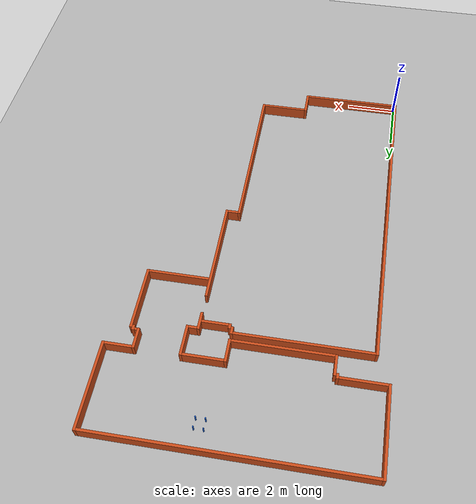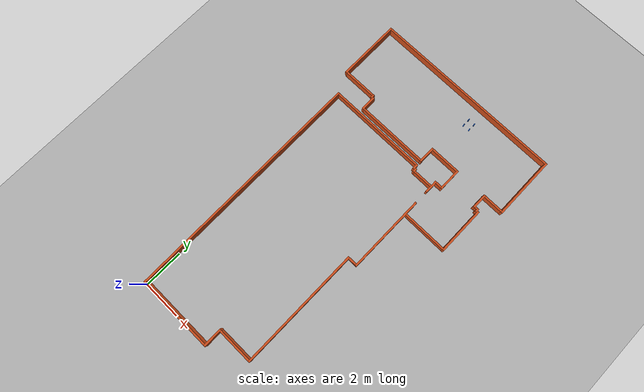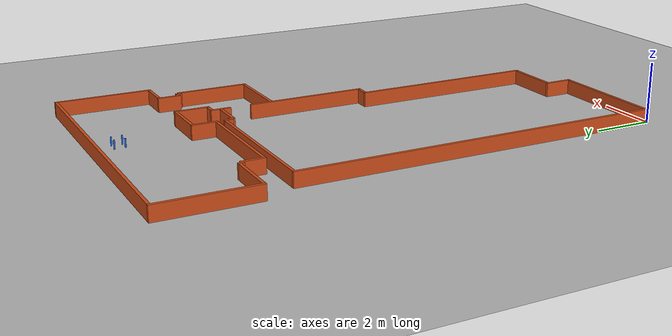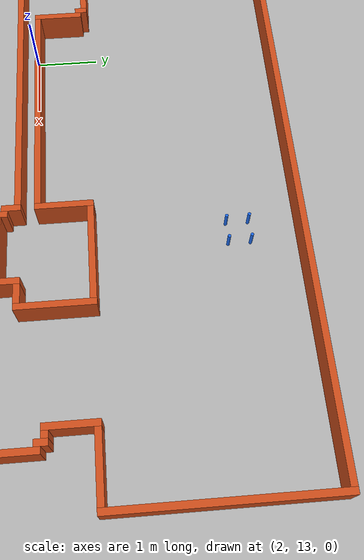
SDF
<?xml version="1.0"?>
<!-- Mundo de prueba generado a partir de map_10x10_2026.png (filas = x, columnas = y, offset x=-0.7 y=0.1) -->
<sdf version="1.6">
  <world name="default">
    <plugin filename="gz-sim-physics-system" name="gz::sim::systems::Physics"></plugin>
    <plugin filename="gz-sim-user-commands-system" name="gz::sim::systems::UserCommands"></plugin>
    <plugin filename="gz-sim-scene-broadcaster-system" name="gz::sim::systems::SceneBroadcaster"></plugin>
    <plugin filename="gz-sim-sensors-system" name="gz::sim::systems::Sensors">
      <render_engine>ogre2</render_engine>
    </plugin>
    <plugin filename="gz-sim-imu-system" name="gz::sim::systems::Imu"></plugin>
    <light type="directional" name="sun">
      <cast_shadows>false</cast_shadows>
      <pose>0 0 10 0 0 0</pose>
      <diffuse>0.8 0.8 0.8 1</diffuse>
      <direction>-0.5 0.1 -0.9</direction>
    </light>
    <model name="ground">
      <static>true</static>
      <link name="link">
        <collision name="collision"><geometry><plane><normal>0 0 1</normal><size>60 60</size></plane></geometry></collision>
        <visual name="visual">
          <geometry><plane><normal>0 0 1</normal><size>60 60</size></plane></geometry>
          <material><ambient>0.7 0.7 0.7 1</ambient><diffuse>0.7 0.7 0.7 1</diffuse></material>
        </visual>
      </link>
    </model>
    <model name="walls">
      <static>true</static>
      <link name="link">
        <collision name="c0"><pose>-0.550 15.450 0.25 0 0 0</pose><geometry><box><size>0.100 3.300 0.5</size></box></geometry></collision>
        <visual name="v0"><pose>-0.550 15.450 0.25 0 0 0</pose><geometry><box><size>0.100 3.300 0.5</size></box></geometry><material><ambient>0.8 0.3 0.1 1</ambient><diffuse>0.8 0.3 0.1 1</diffuse></material></visual>
        <collision name="c1"><pose>0.350 13.850 0.25 0 0 0</pose><geometry><box><size>1.700 0.100 0.5</size></box></geometry></collision>
        <visual name="v1"><pose>0.350 13.850 0.25 0 0 0</pose><geometry><box><size>1.700 0.100 0.5</size></box></geometry><material><ambient>0.8 0.3 0.1 1</ambient><diffuse>0.8 0.3 0.1 1</diffuse></material></visual>
        <collision name="c2"><pose>4.500 17.050 0.25 0 0 0</pose><geometry><box><size>10.000 0.100 0.5</size></box></geometry></collision>
        <visual name="v2"><pose>4.500 17.050 0.25 0 0 0</pose><geometry><box><size>10.000 0.100 0.5</size></box></geometry><material><ambient>0.8 0.3 0.1 1</ambient><diffuse>0.8 0.3 0.1 1</diffuse></material></visual>
        <collision name="c3"><pose>-0.050 6.450 0.25 0 0 0</pose><geometry><box><size>0.100 12.700 0.5</size></box></geometry></collision>
        <visual name="v3"><pose>-0.050 6.450 0.25 0 0 0</pose><geometry><box><size>0.100 12.700 0.5</size></box></geometry><material><ambient>0.8 0.3 0.1 1</ambient><diffuse>0.8 0.3 0.1 1</diffuse></material></visual>
        <collision name="c4"><pose>1.950 0.150 0.25 0 0 0</pose><geometry><box><size>3.900 0.100 0.5</size></box></geometry></collision>
        <visual name="v4"><pose>1.950 0.150 0.25 0 0 0</pose><geometry><box><size>3.900 0.100 0.5</size></box></geometry><material><ambient>0.8 0.3 0.1 1</ambient><diffuse>0.8 0.3 0.1 1</diffuse></material></visual>
        <collision name="c5"><pose>2.550 12.750 0.25 0 0 0</pose><geometry><box><size>5.100 0.100 0.5</size></box></geometry></collision>
        <visual name="v5"><pose>2.550 12.750 0.25 0 0 0</pose><geometry><box><size>5.100 0.100 0.5</size></box></geometry><material><ambient>0.8 0.3 0.1 1</ambient><diffuse>0.8 0.3 0.1 1</diffuse></material></visual>
        <collision name="c6"><pose>1.250 13.800 0.25 0 0 0</pose><geometry><box><size>0.100 0.200 0.5</size></box></geometry></collision>
        <visual name="v6"><pose>1.250 13.800 0.25 0 0 0</pose><geometry><box><size>0.100 0.200 0.5</size></box></geometry><material><ambient>0.8 0.3 0.1 1</ambient><diffuse>0.8 0.3 0.1 1</diffuse></material></visual>
        <collision name="c7"><pose>1.350 13.400 0.25 0 0 0</pose><geometry><box><size>0.100 0.800 0.5</size></box></geometry></collision>
        <visual name="v7"><pose>1.350 13.400 0.25 0 0 0</pose><geometry><box><size>0.100 0.800 0.5</size></box></geometry><material><ambient>0.8 0.3 0.1 1</ambient><diffuse>0.8 0.3 0.1 1</diffuse></material></visual>
        <collision name="c8"><pose>3.250 13.050 0.25 0 0 0</pose><geometry><box><size>3.700 0.100 0.5</size></box></geometry></collision>
        <visual name="v8"><pose>3.250 13.050 0.25 0 0 0</pose><geometry><box><size>3.700 0.100 0.5</size></box></geometry><material><ambient>0.8 0.3 0.1 1</ambient><diffuse>0.8 0.3 0.1 1</diffuse></material></visual>
        <collision name="c9"><pose>3.950 0.600 0.25 0 0 0</pose><geometry><box><size>0.100 1.000 0.5</size></box></geometry></collision>
        <visual name="v9"><pose>3.950 0.600 0.25 0 0 0</pose><geometry><box><size>0.100 1.000 0.5</size></box></geometry><material><ambient>0.8 0.3 0.1 1</ambient><diffuse>0.8 0.3 0.1 1</diffuse></material></visual>
        <collision name="c10"><pose>4.900 1.050 0.25 0 0 0</pose><geometry><box><size>1.800 0.100 0.5</size></box></geometry></collision>
        <visual name="v10"><pose>4.900 1.050 0.25 0 0 0</pose><geometry><box><size>1.800 0.100 0.5</size></box></geometry><material><ambient>0.8 0.3 0.1 1</ambient><diffuse>0.8 0.3 0.1 1</diffuse></material></visual>
        <collision name="c11"><pose>5.150 12.650 0.25 0 0 0</pose><geometry><box><size>0.100 0.300 0.5</size></box></geometry></collision>
        <visual name="v11"><pose>5.150 12.650 0.25 0 0 0</pose><geometry><box><size>0.100 0.300 0.5</size></box></geometry><material><ambient>0.8 0.3 0.1 1</ambient><diffuse>0.8 0.3 0.1 1</diffuse></material></visual>
        <collision name="c12"><pose>5.150 13.450 0.25 0 0 0</pose><geometry><box><size>0.100 0.900 0.5</size></box></geometry></collision>
        <visual name="v12"><pose>5.150 13.450 0.25 0 0 0</pose><geometry><box><size>0.100 0.900 0.5</size></box></geometry><material><ambient>0.8 0.3 0.1 1</ambient><diffuse>0.8 0.3 0.1 1</diffuse></material></visual>
        <collision name="c13"><pose>5.250 12.500 0.25 0 0 0</pose><geometry><box><size>0.100 0.200 0.5</size></box></geometry></collision>
        <visual name="v13"><pose>5.250 12.500 0.25 0 0 0</pose><geometry><box><size>0.100 0.200 0.5</size></box></geometry><material><ambient>0.8 0.3 0.1 1</ambient><diffuse>0.8 0.3 0.1 1</diffuse></material></visual>
        <collision name="c14"><pose>5.950 13.850 0.25 0 0 0</pose><geometry><box><size>1.500 0.100 0.5</size></box></geometry></collision>
        <visual name="v14"><pose>5.950 13.850 0.25 0 0 0</pose><geometry><box><size>1.500 0.100 0.5</size></box></geometry><material><ambient>0.8 0.3 0.1 1</ambient><diffuse>0.8 0.3 0.1 1</diffuse></material></visual>
        <collision name="c15"><pose>5.800 12.450 0.25 0 0 0</pose><geometry><box><size>1.000 0.100 0.5</size></box></geometry></collision>
        <visual name="v15"><pose>5.800 12.450 0.25 0 0 0</pose><geometry><box><size>1.000 0.100 0.5</size></box></geometry><material><ambient>0.8 0.3 0.1 1</ambient><diffuse>0.8 0.3 0.1 1</diffuse></material></visual>
        <collision name="c16"><pose>5.850 4.200 0.25 0 0 0</pose><geometry><box><size>0.100 6.400 0.5</size></box></geometry></collision>
        <visual name="v16"><pose>5.850 4.200 0.25 0 0 0</pose><geometry><box><size>0.100 6.400 0.5</size></box></geometry><material><ambient>0.8 0.3 0.1 1</ambient><diffuse>0.8 0.3 0.1 1</diffuse></material></visual>
        <collision name="c17"><pose>6.100 7.350 0.25 0 0 0</pose><geometry><box><size>0.400 0.100 0.5</size></box></geometry></collision>
        <visual name="v17"><pose>6.100 7.350 0.25 0 0 0</pose><geometry><box><size>0.400 0.100 0.5</size></box></geometry><material><ambient>0.8 0.3 0.1 1</ambient><diffuse>0.8 0.3 0.1 1</diffuse></material></visual>
        <collision name="c18"><pose>6.350 9.350 0.25 0 0 0</pose><geometry><box><size>0.100 4.100 0.5</size></box></geometry></collision>
        <visual name="v18"><pose>6.350 9.350 0.25 0 0 0</pose><geometry><box><size>0.100 4.100 0.5</size></box></geometry><material><ambient>0.8 0.3 0.1 1</ambient><diffuse>0.8 0.3 0.1 1</diffuse></material></visual>
        <collision name="c19"><pose>6.350 12.450 0.25 0 0 0</pose><geometry><box><size>0.100 0.700 0.5</size></box></geometry></collision>
        <visual name="v19"><pose>6.350 12.450 0.25 0 0 0</pose><geometry><box><size>0.100 0.700 0.5</size></box></geometry><material><ambient>0.8 0.3 0.1 1</ambient><diffuse>0.8 0.3 0.1 1</diffuse></material></visual>
        <collision name="c20"><pose>7.550 10.650 0.25 0 0 0</pose><geometry><box><size>2.300 0.100 0.5</size></box></geometry></collision>
        <visual name="v20"><pose>7.550 10.650 0.25 0 0 0</pose><geometry><box><size>2.300 0.100 0.5</size></box></geometry><material><ambient>0.8 0.3 0.1 1</ambient><diffuse>0.8 0.3 0.1 1</diffuse></material></visual>
        <collision name="c21"><pose>6.550 12.750 0.25 0 0 0</pose><geometry><box><size>0.300 0.100 0.5</size></box></geometry></collision>
        <visual name="v21"><pose>6.550 12.750 0.25 0 0 0</pose><geometry><box><size>0.300 0.100 0.5</size></box></geometry><material><ambient>0.8 0.3 0.1 1</ambient><diffuse>0.8 0.3 0.1 1</diffuse></material></visual>
        <collision name="c22"><pose>6.750 13.300 0.25 0 0 0</pose><geometry><box><size>0.100 1.200 0.5</size></box></geometry></collision>
        <visual name="v22"><pose>6.750 13.300 0.25 0 0 0</pose><geometry><box><size>0.100 1.200 0.5</size></box></geometry><material><ambient>0.8 0.3 0.1 1</ambient><diffuse>0.8 0.3 0.1 1</diffuse></material></visual>
        <collision name="c23"><pose>8.450 13.500 0.25 0 0 0</pose><geometry><box><size>0.100 0.800 0.5</size></box></geometry></collision>
        <visual name="v23"><pose>8.450 13.500 0.25 0 0 0</pose><geometry><box><size>0.100 0.800 0.5</size></box></geometry><material><ambient>0.8 0.3 0.1 1</ambient><diffuse>0.8 0.3 0.1 1</diffuse></material></visual>
        <collision name="c24"><pose>8.550 13.150 0.25 0 0 0</pose><geometry><box><size>0.100 0.100 0.5</size></box></geometry></collision>
        <visual name="v24"><pose>8.550 13.150 0.25 0 0 0</pose><geometry><box><size>0.100 0.100 0.5</size></box></geometry><material><ambient>0.8 0.3 0.1 1</ambient><diffuse>0.8 0.3 0.1 1</diffuse></material></visual>
        <collision name="c25"><pose>9.000 13.850 0.25 0 0 0</pose><geometry><box><size>1.000 0.100 0.5</size></box></geometry></collision>
        <visual name="v25"><pose>9.000 13.850 0.25 0 0 0</pose><geometry><box><size>1.000 0.100 0.5</size></box></geometry><material><ambient>0.8 0.3 0.1 1</ambient><diffuse>0.8 0.3 0.1 1</diffuse></material></visual>
        <collision name="c26"><pose>8.650 13.100 0.25 0 0 0</pose><geometry><box><size>0.100 0.200 0.5</size></box></geometry></collision>
        <visual name="v26"><pose>8.650 13.100 0.25 0 0 0</pose><geometry><box><size>0.100 0.200 0.5</size></box></geometry><material><ambient>0.8 0.3 0.1 1</ambient><diffuse>0.8 0.3 0.1 1</diffuse></material></visual>
        <collision name="c27"><pose>8.750 11.850 0.25 0 0 0</pose><geometry><box><size>0.100 2.500 0.5</size></box></geometry></collision>
        <visual name="v27"><pose>8.750 11.850 0.25 0 0 0</pose><geometry><box><size>0.100 2.500 0.5</size></box></geometry><material><ambient>0.8 0.3 0.1 1</ambient><diffuse>0.8 0.3 0.1 1</diffuse></material></visual>
        <collision name="c28"><pose>9.550 15.450 0.25 0 0 0</pose><geometry><box><size>0.100 3.300 0.5</size></box></geometry></collision>
        <visual name="v28"><pose>9.550 15.450 0.25 0 0 0</pose><geometry><box><size>0.100 3.300 0.5</size></box></geometry><material><ambient>0.8 0.3 0.1 1</ambient><diffuse>0.8 0.3 0.1 1</diffuse></material></visual>
      </link>
    </model>
    <model name="station">
      <static>true</static>
      <link name="p0"><pose>5.425 15.925 0.15 0 0 0</pose><collision name="c"><geometry><cylinder><radius>0.025</radius><length>0.3</length></cylinder></geometry></collision><visual name="v"><geometry><cylinder><radius>0.025</radius><length>0.3</length></cylinder></geometry><material><ambient>0.1 0.4 0.9 1</ambient><diffuse>0.1 0.4 0.9 1</diffuse></material></visual></link>
      <link name="p1"><pose>5.425 16.275 0.15 0 0 0</pose><collision name="c"><geometry><cylinder><radius>0.025</radius><length>0.3</length></cylinder></geometry></collision><visual name="v"><geometry><cylinder><radius>0.025</radius><length>0.3</length></cylinder></geometry><material><ambient>0.1 0.4 0.9 1</ambient><diffuse>0.1 0.4 0.9 1</diffuse></material></visual></link>
      <link name="p2"><pose>5.775 15.925 0.15 0 0 0</pose><collision name="c"><geometry><cylinder><radius>0.025</radius><length>0.3</length></cylinder></geometry></collision><visual name="v"><geometry><cylinder><radius>0.025</radius><length>0.3</length></cylinder></geometry><material><ambient>0.1 0.4 0.9 1</ambient><diffuse>0.1 0.4 0.9 1</diffuse></material></visual></link>
      <link name="p3"><pose>5.775 16.275 0.15 0 0 0</pose><collision name="c"><geometry><cylinder><radius>0.025</radius><length>0.3</length></cylinder></geometry></collision><visual name="v"><geometry><cylinder><radius>0.025</radius><length>0.3</length></cylinder></geometry><material><ambient>0.1 0.4 0.9 1</ambient><diffuse>0.1 0.4 0.9 1</diffuse></material></visual></link>
    </model>
  </world>
</sdf>
